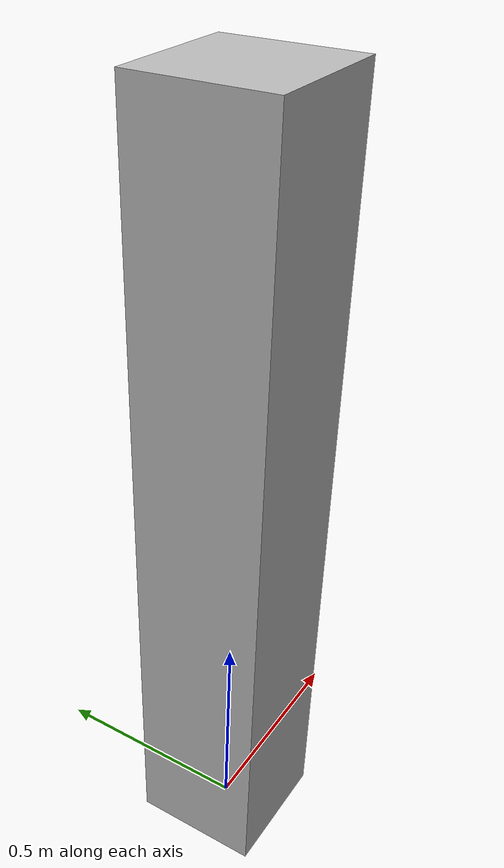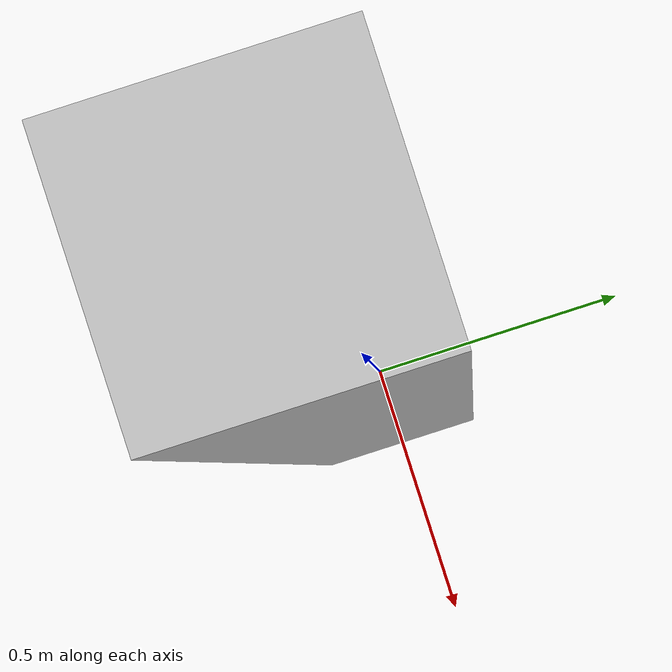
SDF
<?xml version="1.0"?>
<sdf version="1.6">
  <model name="obstacle_box">
    <static>true</static>
    <link name="body">
      <collision name="body_collision">
        <geometry><box><size>0.3 0.3 1.8</size></box></geometry>
      </collision>
      <visual name="body_visual">
        <geometry><box><size>0.3 0.3 1.8</size></box></geometry>
        <material><script>Gazebo/Red</script></material>
      </visual>
      <pose>0 0 0.9 0 0 0</pose>
    </link>
  </model>
</sdf>
